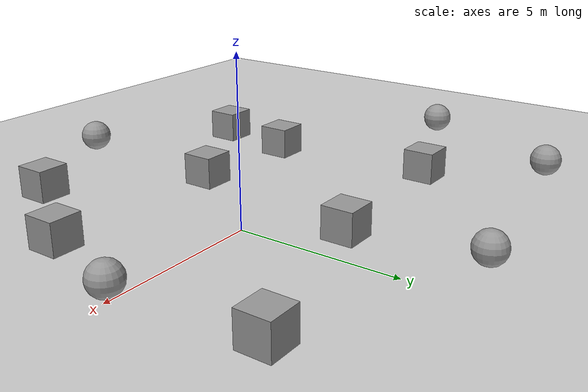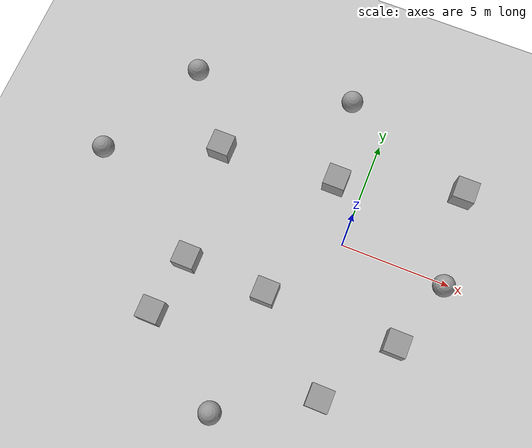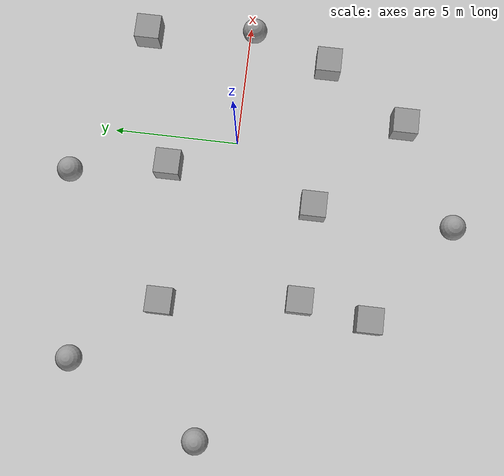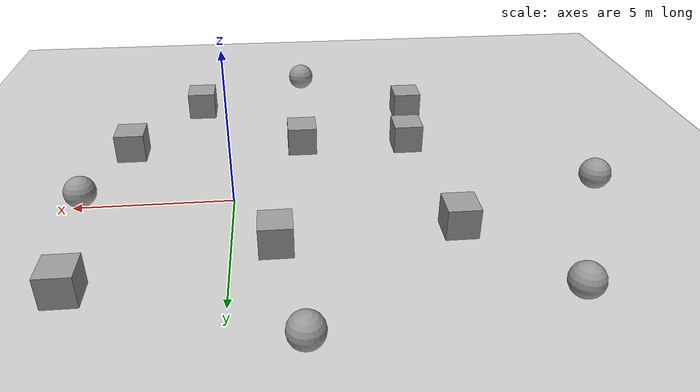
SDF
<sdf version="1.6">
 <world name="default">
  <light name="sun" type="directional">
   <pose>0 0 10 0 -0 0</pose>
   <diffuse>0.8 0.8 0.8 1</diffuse>
   <specular>0.2 0.2 0.2 1</specular>
   <attenuation>
    <range>1000</range>
    <constant>0.9</constant>
    <linear>0.01</linear>
    <quadratic>0.001</quadratic>
   </attenuation>
   <direction>-0.5 0.1 -0.9</direction>
  </light>
  <model name="ground_plane">
   <static>1</static>
   <link name="link">
    <collision name="collision">
     <geometry><plane><normal>0 0 1</normal><size>100 100</size></plane></geometry>
     <surface>
      <contact><collide_bitmask>65535</collide_bitmask></contact>
      <friction><ode><mu>100</mu><mu2>50</mu2></ode></friction>
     </surface>
    </collision>
    <visual name="visual">
     <cast_shadows>0</cast_shadows>
     <geometry><plane><normal>0 0 1</normal><size>100 100</size></plane></geometry>
     <material>
      <script><uri>file://media/materials/scripts/gazebo.material</uri><name>Gazebo/Grey</name></script>
     </material>
    </visual>
   </link>
  </model>
  <physics name="default_physics" default="0" type="ode">
   <real_time_update_rate>1000</real_time_update_rate>
   <max_step_size>0.001</max_step_size>
   <real_time_factor>1</real_time_factor>
   <ode>
    <solver>
     <type>quick</type>
     <iters>150</iters>
     <precon_iters>0</precon_iters>
     <sor>1.4</sor>
     <use_dynamic_moi_rescaling>1</use_dynamic_moi_rescaling>
    </solver>
    <constraints>
     <cfm>1e-05</cfm>
     <erp>0.2</erp>
     <contact_max_correcting_vel>2000</contact_max_correcting_vel>
     <contact_surface_layer>0.01</contact_surface_layer>
    </constraints>
   </ode>
  </physics>
  <scene><ambient>0.4 0.4 0.4 1</ambient><background>0.7 0.7 0.7 1</background><shadows>1</shadows></scene>
  <gravity>0 0 -9.8</gravity>
  <magnetic_field>6e-06 2.3e-05 -4.2e-05</magnetic_field>
  <atmosphere type="adiabatic"/>
  <audio><device>default</device></audio>
  <spherical_coordinates>
   <surface_model>EARTH_WGS84</surface_model>
   <latitude_deg>0</latitude_deg>
   <longitude_deg>0</longitude_deg>
   <elevation>0</elevation>
   <heading_deg>0</heading_deg>
  </spherical_coordinates>
  <model name="unit_box">
   <pose>-6.55256 -5.85285 0.5 0 -0 0</pose>
   <link name="link">
    <inertial>
     <mass>1</mass>
     <inertia>
      <ixx>0.166667</ixx>
      <ixy>0</ixy>
      <ixz>0</ixz>
      <iyy>0.166667</iyy>
      <iyz>0</iyz>
      <izz>0.166667</izz>
     </inertia>
    </inertial>
    <collision name="collision"><geometry><box><size>1 1 1</size></box></geometry></collision>
    <visual name="visual">
     <geometry><box><size>1 1 1</size></box></geometry>
     <material>
      <script><name>Gazebo/Grey</name><uri>file://media/materials/scripts/gazebo.material</uri></script>
     </material>
    </visual>
   </link>
  </model>
  <model name="unit_box_0">
   <pose>-6.09757 -3.13977 0.5 0 -0 0</pose>
   <link name="link">
    <inertial>
     <mass>1</mass>
     <inertia>
      <ixx>0.166667</ixx>
      <ixy>0</ixy>
      <ixz>0</ixz>
      <iyy>0.166667</iyy>
      <iyz>0</iyz>
      <izz>0.166667</izz>
     </inertia>
    </inertial>
    <collision name="collision"><geometry><box><size>1 1 1</size></box></geometry></collision>
    <visual name="visual">
     <geometry><box><size>1 1 1</size></box></geometry>
     <material>
      <script><name>Gazebo/Grey</name><uri>file://media/materials/scripts/gazebo.material</uri></script>
     </material>
    </visual>
   </link>
  </model>
  <model name="unit_box_1">
   <pose>-6.70539 2.181 0.5 0 -0 0</pose>
   <link name="link">
    <inertial>
     <mass>1</mass>
     <inertia>
      <ixx>0.166667</ixx>
      <ixy>0</ixy>
      <ixz>0</ixz>
      <iyy>0.166667</iyy>
      <iyz>0</iyz>
      <izz>0.166667</izz>
     </inertia>
    </inertial>
    <collision name="collision"><geometry><box><size>1 1 1</size></box></geometry></collision>
    <visual name="visual">
     <geometry><box><size>1 1 1</size></box></geometry>
     <material>
      <script><name>Gazebo/Grey</name><uri>file://media/materials/scripts/gazebo.material</uri></script>
     </material>
    </visual>
   </link>
  </model>
  <model name="unit_box_2">
   <pose>1.42491 -6.59443 0.5 0 -0 0</pose>
   <link name="link">
    <inertial>
     <mass>1</mass>
     <inertia>
      <ixx>0.166667</ixx>
      <ixy>0</ixy>
      <ixz>0</ixz>
      <iyy>0.166667</iyy>
      <iyz>0</iyz>
      <izz>0.166667</izz>
     </inertia>
    </inertial>
    <collision name="collision"><geometry><box><size>1 1 1</size></box></geometry></collision>
    <visual name="visual">
     <geometry><box><size>1 1 1</size></box></geometry>
     <material>
      <script><name>Gazebo/Grey</name><uri>file://media/materials/scripts/gazebo.material</uri></script>
     </material>
    </visual>
   </link>
  </model>
  <model name="unit_box_3">
   <pose>3.64471 -3.31448 0.5 0 -0 0</pose>
   <link name="link">
    <inertial>
     <mass>1</mass>
     <inertia>
      <ixx>0.166667</ixx>
      <ixy>0</ixy>
      <ixz>0</ixz>
      <iyy>0.166667</iyy>
      <iyz>0</iyz>
      <izz>0.166667</izz>
     </inertia>
    </inertial>
    <collision name="collision"><geometry><box><size>1 1 1</size></box></geometry></collision>
    <visual name="visual">
     <geometry><box><size>1 1 1</size></box></geometry>
     <material>
      <script><name>Gazebo/Grey</name><uri>file://media/materials/scripts/gazebo.material</uri></script>
     </material>
    </visual>
   </link>
  </model>
  <model name="unit_box_4">
   <pose>4.23628 4.15256 0.5 0 -0 0</pose>
   <link name="link">
    <inertial>
     <mass>1</mass>
     <inertia>
      <ixx>0.166667</ixx>
      <ixy>0</ixy>
      <ixz>0</ixz>
      <iyy>0.166667</iyy>
      <iyz>0</iyz>
      <izz>0.166667</izz>
     </inertia>
    </inertial>
    <collision name="collision"><geometry><box><size>1 1 1</size></box></geometry></collision>
    <visual name="visual">
     <geometry><box><size>1 1 1</size></box></geometry>
     <material>
      <script><name>Gazebo/Grey</name><uri>file://media/materials/scripts/gazebo.material</uri></script>
     </material>
    </visual>
   </link>
  </model>
  <model name="unit_sphere">
   <pose>-1.93915 6.46191 0.5 0 -0 0</pose>
   <link name="link">
    <inertial>
     <mass>1</mass>
     <inertia><ixx>0.1</ixx><ixy>0</ixy><ixz>0</ixz><iyy>0.1</iyy><iyz>0</iyz><izz>0.1</izz></inertia>
    </inertial>
    <collision name="collision"><geometry><sphere><radius>0.5</radius></sphere></geometry></collision>
    <visual name="visual">
     <geometry><sphere><radius>0.5</radius></sphere></geometry>
     <material>
      <script><name>Gazebo/Grey</name><uri>file://media/materials/scripts/gazebo.material</uri></script>
     </material>
    </visual>
   </link>
  </model>
  <model name="unit_sphere_0">
   <pose>-9.23286 5.31051 0.5 0 -0 0</pose>
   <link name="link">
    <inertial>
     <mass>1</mass>
     <inertia><ixx>0.1</ixx><ixy>0</ixy><ixz>0</ixz><iyy>0.1</iyy><iyz>0</iyz><izz>0.1</izz></inertia>
    </inertial>
    <collision name="collision"><geometry><sphere><radius>0.5</radius></sphere></geometry></collision>
    <visual name="visual">
     <geometry><sphere><radius>0.5</radius></sphere></geometry>
     <material>
      <script><name>Gazebo/Grey</name><uri>file://media/materials/scripts/gazebo.material</uri></script>
     </material>
    </visual>
   </link>
  </model>
  <model name="unit_sphere_1">
   <pose>-11.7149 0.17302 0.5 0 -0 0</pose>
   <link name="link">
    <inertial>
     <mass>1</mass>
     <inertia><ixx>0.1</ixx><ixy>0</ixy><ixz>0</ixz><iyy>0.1</iyy><iyz>0</iyz><izz>0.1</izz></inertia>
    </inertial>
    <collision name="collision"><geometry><sphere><radius>0.5</radius></sphere></geometry></collision>
    <visual name="visual">
     <geometry><sphere><radius>0.5</radius></sphere></geometry>
     <material>
      <script><name>Gazebo/Grey</name><uri>file://media/materials/scripts/gazebo.material</uri></script>
     </material>
    </visual>
   </link>
  </model>
  <model name="unit_sphere_2">
   <pose>-2.57265 -8.8171 0.5 0 -0 0</pose>
   <link name="link">
    <inertial>
     <mass>1</mass>
     <inertia><ixx>0.1</ixx><ixy>0</ixy><ixz>0</ixz><iyy>0.1</iyy><iyz>0</iyz><izz>0.1</izz></inertia>
    </inertial>
    <collision name="collision"><geometry><sphere><radius>0.5</radius></sphere></geometry></collision>
    <visual name="visual">
     <geometry><sphere><radius>0.5</radius></sphere></geometry>
     <material>
      <script><name>Gazebo/Grey</name><uri>file://media/materials/scripts/gazebo.material</uri></script>
     </material>
    </visual>
   </link>
  </model>
  <model name="unit_sphere_3">
   <pose>4.73356 -0.174635 0.5 0 -0 0</pose>
   <link name="link">
    <inertial>
     <mass>1</mass>
     <inertia><ixx>0.1</ixx><ixy>0</ixy><ixz>0</ixz><iyy>0.1</iyy><iyz>0</iyz><izz>0.1</izz></inertia>
    </inertial>
    <collision name="collision"><geometry><sphere><radius>0.5</radius></sphere></geometry></collision>
    <visual name="visual">
     <geometry><sphere><radius>0.5</radius></sphere></geometry>
     <material>
      <script><name>Gazebo/Grey</name><uri>file://media/materials/scripts/gazebo.material</uri></script>
     </material>
    </visual>
   </link>
  </model>
  <model name="unit_box_5">
   <pose>-2.33763 -3.29552 0.5 0 -0 0</pose>
   <link name="link">
    <inertial>
     <mass>1</mass>
     <inertia>
      <ixx>0.166667</ixx>
      <ixy>0</ixy>
      <ixz>0</ixz>
      <iyy>0.166667</iyy>
      <iyz>0</iyz>
      <izz>0.166667</izz>
     </inertia>
    </inertial>
    <collision name="collision"><geometry><box><size>1 1 1</size></box></geometry></collision>
    <visual name="visual">
     <geometry><box><size>1 1 1</size></box></geometry>
     <material>
      <script><name>Gazebo/Grey</name><uri>file://media/materials/scripts/gazebo.material</uri></script>
     </material>
    </visual>
   </link>
  </model>
  <model name="unit_box_6">
   <pose>-1.29228 2.59945 0.5 0 -0 0</pose>
   <link name="link">
    <inertial>
     <mass>1</mass>
     <inertia>
      <ixx>0.166667</ixx>
      <ixy>0</ixy>
      <ixz>0</ixz>
      <iyy>0.166667</iyy>
      <iyz>0</iyz>
      <izz>0.166667</izz>
     </inertia>
    </inertial>
    <collision name="collision"><geometry><box><size>1 1 1</size></box></geometry></collision>
    <visual name="visual">
     <geometry><box><size>1 1 1</size></box></geometry>
     <material>
      <script><name>Gazebo/Grey</name><uri>file://media/materials/scripts/gazebo.material</uri></script>
     </material>
    </visual>
   </link>
  </model>
 </world>
</sdf>
